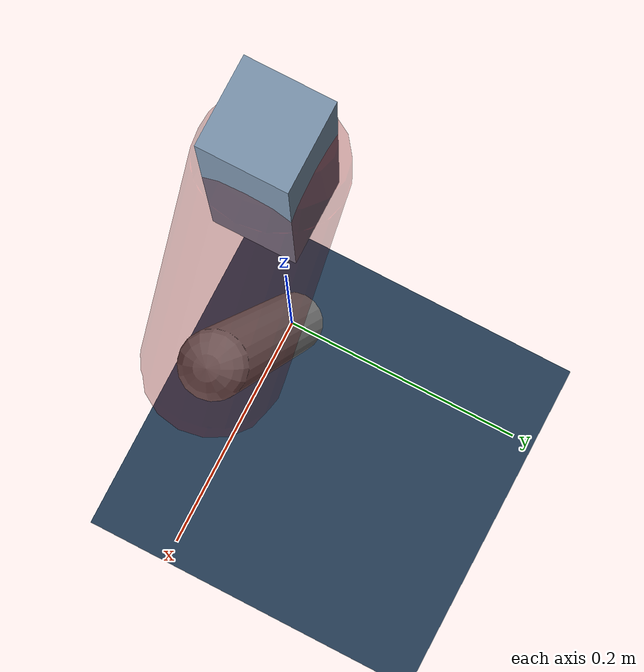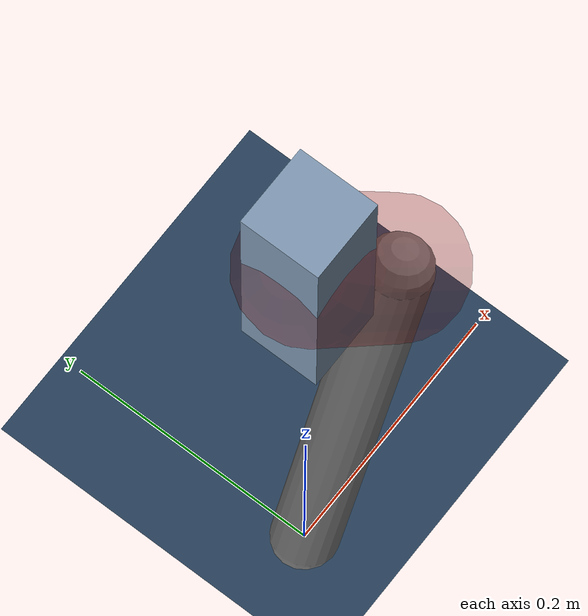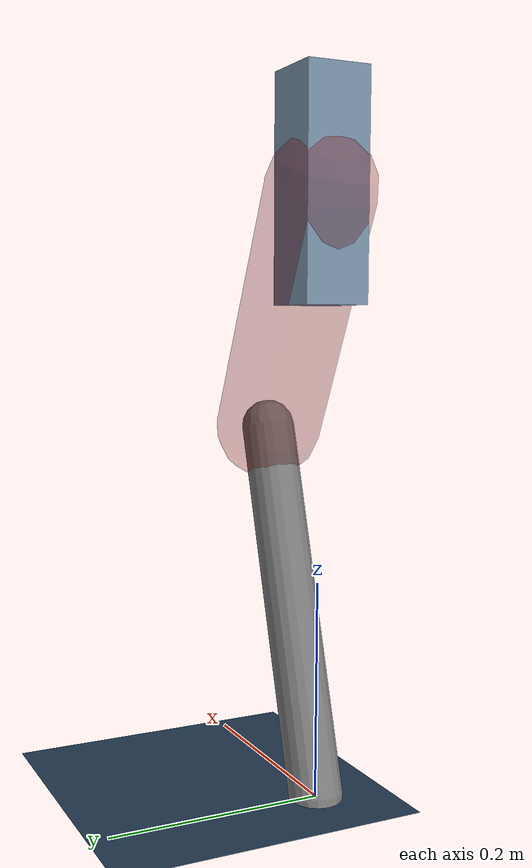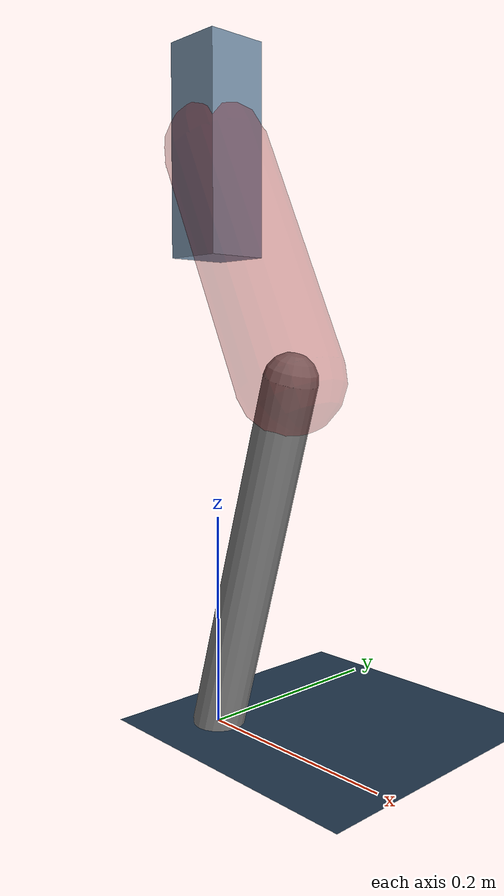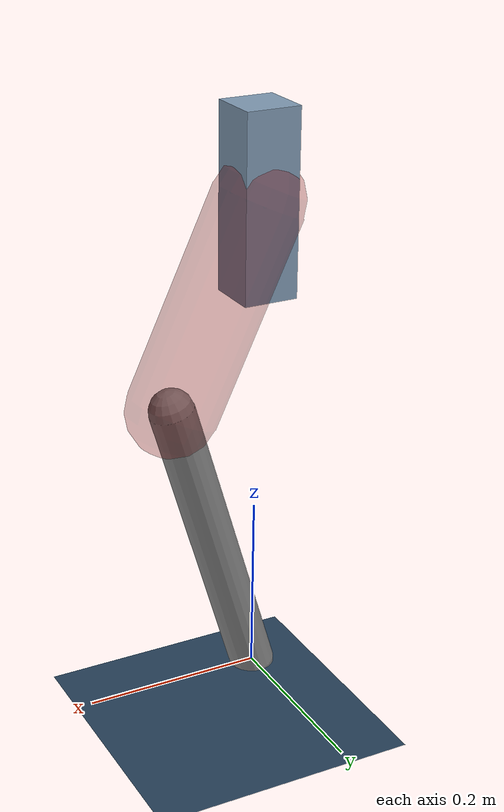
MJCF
<mujoco model="Hopper2D">
	<compiler inertiafromgeom="true" angle="radian" />
	<option timestep="0.001" integrator="implicit" cone="elliptic" solver="Newton" tolerance="1e-10" />

	<default>
		<geom contype="1" conaffinity="1" condim="3" friction="2 0.005 0.0001" solref="0.005 1" />
		<joint limited="true" damping="0.1" />
	</default>

	<asset>
		<texture name="skybox" type="skybox" builtin="gradient" rgb1=".4 .6 .8" rgb2="0 0 0" width="800" height="800" />
		<texture name="grid" type="2d" builtin="checker" rgb1=".1 .2 .3" rgb2=".2 .3 .4" width="300" height="300" mark="edge" markrgb=".2 .3 .4" />
		<material name="ground" texture="grid" texrepeat="1 1" texuniform="true" reflectance="0.1" />
		<material name="leg" rgba="0.5 0.6 0.7 1" />
	</asset>

	<worldbody>

		<geom name="floor" type="plane" size="5 5 0.25" material="ground" />

		<light directional="false" diffuse="0.8 0.8 0.8" specular="0.3 0.3 0.3" pos="0 0 2" dir="0 0 -1" />
		<light mode="targetbodycom" target="base" directional="false" diffuse="0.8 0.8 0.8" specular="0.3 0.3 0.3" pos="0 0 2" dir="0 0 -1" />

		<camera name="fixed" pos="0 -2 1" xyaxes="1 0 0 0 0 1" />
		<camera name="tracking" mode="trackcom" pos="0 -3 1" />

		<body name="root" pos="0 0 0.5477136150901141">
			<joint name="slide_x" type="slide" axis="1 0 0" range="-100 100" />
			<joint name="slide_z" type="slide" axis="0 0 1" range="0 10" />

			<body name="base" pos="0 0 0">
				<geom name="torso" type="box" size="0.03 0.03 0.1" mass="2.716" material="leg" />

				<body name="link1" pos="0 0 0" euler="0 1.1350963252076485 0">
					<joint type="hinge" axis="0 -1 0" pos="0 0 0" name="hinge1" limited="true" range="-3.14 3.14" stiffness="0" damping="0.1" />
					<geom name="thigh" type="capsule" fromto="0 0 0 0.23532358813688037 0 0" size="0.05" rgba="0.5 0 0 0.3" mass="0.8186089703422009" />

					<body name="link2" pos="0.23532358813688037 0 0" euler="0 0.7244235145213239 0">
						<joint type="hinge" axis="0 -1 0" pos="0 0 0" name="hinge2" limited="true" range="-3.14 3.14" stiffness="0" damping="0.1" />
						<geom name="shank" type="capsule" fromto="0 0 0 0.3488132110624116 0 0" size="0.025" mass="0.5229505688499293" />

					</body>
				</body>
			</body>
		</body>
	</worldbody>

	<actuator>
		<motor name="torque1" joint="hinge1" ctrlrange="-109.16832546533594 109.16832546533594" ctrllimited="true" gear="1" />
		<motor name="torque2" joint="hinge2" ctrlrange="-29.3247820629902 29.3247820629902" ctrllimited="true" gear="1" />
	</actuator>
</mujoco>
